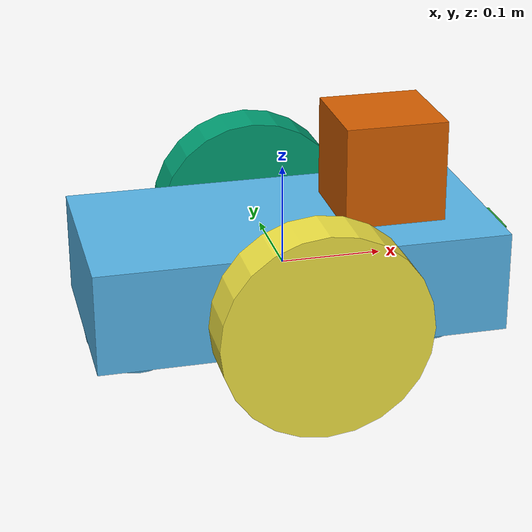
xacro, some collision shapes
<?xml version="1.0"?>

<robot name="udacity_bot" xmlns:xacro="http://www.ros.org/wiki/xacro">
  <xacro:include filename="$(find udacity_bot)/urdf/udacity_bot.gazebo"/>

  <link name="robot_footprint"></link>

  <joint type="fixed" name="robot_footprint_joint">
    <origin xyz="0 0 0" rpy="0 0 0"/>
    <parent link="robot_footprint"/>
    <child link="chassis"/>
  </joint>

  <link name="chassis">
    <pose>0 0 0.1 0 0 0</pose>

    <inertial>
      <mass value="15.0"/>
      <origin xyz="0.0 0 0" rpy="0 0 0"/>
      <inertia
          ixx="0.1" ixy="0" ixz="0"
          iyy="0.1" iyz="0"
          izz="0.1"
      />
    </inertial>

    <collision name="collision">
      <origin xyz="0 0 0" rpy="0 0 0"/>
      <geometry>
        <box size=".4 .2 .1"/>
      </geometry>
    </collision>

    <visual name="chassis_visual">
      <origin xyz="0 0 0" rpy="0 0 0"/>
      <geometry>
        <box size=".4 .2 .1"/>
      </geometry>
    </visual>

    <collision name="back_caster_collision">
      <origin xyz="-0.15 0 -0.05" rpy="0 0 0"/>
      <geometry>
        <sphere radius="0.0499"/>
      </geometry>
      <surface>
        <friction>
          <ode>
            <mu>0.00</mu>
            <mu2>0.00</mu2>
          </ode>
        </friction>
      </surface>
    </collision>

    <visual name="back_caster_visual">
      <origin xyz="-0.15 0 -0.05" rpy="0 0 0"/>
      <geometry>
        <sphere radius="0.05"/>
      </geometry>
    </visual>

    <collision name="front_caster_collision">
      <origin xyz="0.15 0 -0.05" rpy="0 0 0"/>
      <geometry>
        <sphere radius="0.0499"/>
      </geometry>
      <surface>
        <friction>
          <ode>
            <mu>0.00</mu>
            <mu2>0.00</mu2>
          </ode>
        </friction>
      </surface>
    </collision>

    <visual name="front_caster_visual">
      <origin xyz="0.15 0 -0.05" rpy="0 0 0"/>
      <geometry>
        <sphere radius="0.05"/>
      </geometry>
    </visual>
  </link>

  <link name="left_wheel">
    <inertial>
      <mass value="5.0"/>
      <origin xyz="0.0 0 0" rpy="0 0.15707 0.15707"/>
      <inertia
          ixx="0.1" ixy="0" ixz="0"
          iyy="0.1" iyz="0"
          izz="0.1" />
    </inertial>

    <collision name="left_wheel_collision">
      <origin xyz="0 0 0" rpy="0 1.5707 1.5707"/>
      <geometry>
        <cylinder length="0.05" radius="0.1"/>
      </geometry>
    </collision>

    <visual name="left_wheel_visual">
      <origin xyz="0 0 0" rpy="0 1.5707 1.5707"/>
      <geometry>
        <cylinder length="0.05" radius="0.1"/>
      </geometry>
    </visual>

  </link>

  <joint type="continuous" name="left_wheel_hinge">
    <origin xyz="0 0.15 0" rpy="0 0 0"/>
    <child link="left_wheel"/>
    <parent link="chassis"/>
    <axis xyz="0 1 0" rpy="0 0 0"/>
    <limit effort="10000" velocity="1000"/>
    <dynamics damping="1.0" friction="1.0"/>

  </joint>

  <link name="right_wheel">
    <collision name="right_wheel_collision">
      <origin xyz="0 0 0" rpy="0 1.5707 1.5707"/>
      <geometry>
        <cylinder length="0.05" radius="0.1"/>
      </geometry>
    </collision>

    <inertial>
      <mass value="5.0"/>
      <origin xyz="0 0 0" rpy="0 1.5707 1.5707"/>
      <inertia
          ixx="0.1" ixy="0" ixz="0"
          iyy="0.1" iyz="0"
          izz="0.1" />
    </inertial>

    <visual name="right_wheel_visual">
      <origin xyz="0 0 0" rpy="0 1.5707 1.5707"/>
      <geometry>
        <cylinder length="0.05" radius="0.1"/>
      </geometry>
    </visual>

  </link>

  <joint type="continuous" name="right_wheel_hinge">
    <origin xyz="0 -0.15 0" rpy="0 0 0"/>
    <child link="right_wheel"/>
    <parent link="chassis"/>
    <axis xyz="0 1 0" rpy="0 0 0"/>
    <limit effort="10000" velocity="1000"/>
    <dynamics damping="1.0" friction="1.0"/>

  </joint>

  <link name="camera">
    <collision name="camera_collision">
      <origin xyz="0 0 0" rpy="0 0 0"/>
        <geometry>
          <box size="0.05 0.05 0.05"/>
        </geometry>
    </collision>

    <inertial>
      <mass value="0.1"/>
      <origin xyz="0 0 0" rpy="0 0 0"/>
      <inertia
          ixx="1e-6" ixy="0" ixz="0"
          iyy="1e-6" iyz="0"
          izz="1e-6" />
    </inertial>

    <visual name="camera_visual">
      <origin xyz="0 0 0" rpy="0 0 0"/>
      <geometry>
        <box size="0.05 0.05 0.05"/>
      </geometry>
    </visual>

  </link>

  <joint name="camera_joint" type="fixed">
    <origin xyz="0.2 0 0" rpy="0 0 0"/>
    <child link="camera"/>
    <parent link="chassis"/>
  </joint>

<link name="hokuyo">
    <collision name="hokuyo_collision">
      <origin xyz="0 0 0" rpy="0 0 0"/>
        <geometry>
          <box size="0.1 0.1 0.1"/>
          <!-- box size="0.1 0.1 0.1"/-->
        </geometry>
    </collision>

    <inertial>
      <mass value="0.1"/>
      <origin xyz="0 0 0" rpy="0 0 0"/>
      <inertia
          ixx="1e-6" ixy="0" ixz="0"
          iyy="1e-6" iyz="0"
          izz="1e-6" />
    </inertial>

    <visual name="hokuyo_visual">
      <origin xyz="0 0 0" rpy="0 0 0"/>
      <geometry>
        <mesh filename="package://udacity_bot/meshes/hokuyo.dae"/>
      </geometry>
    </visual>

  </link>

  <joint type="fixed" name="hokuyo_joint">
    <origin xyz="0.1 0 0.10" rpy="0 0 0"/>
    <child link="hokuyo"/>
    <parent link="chassis"/>
  </joint>

</robot>
